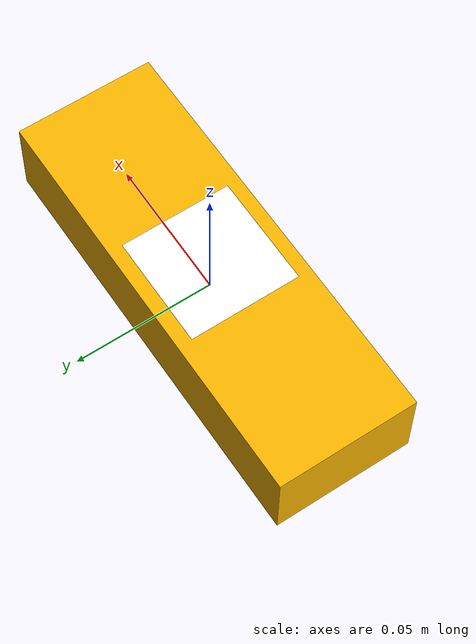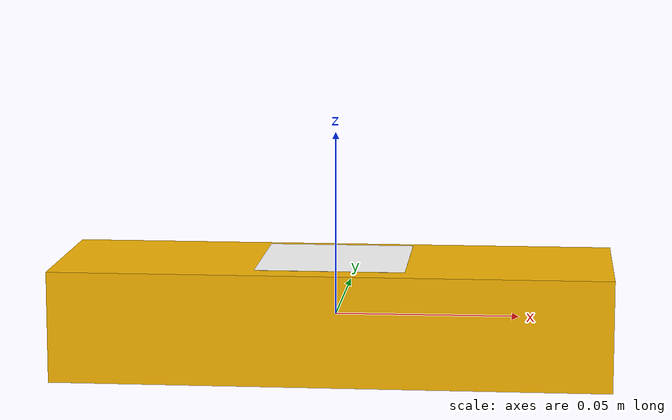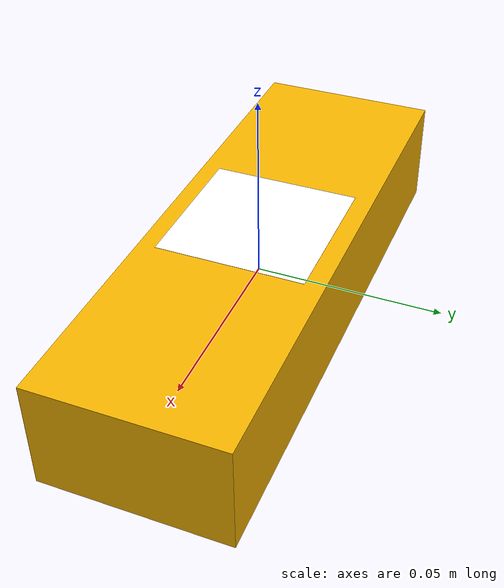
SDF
<?xml version="1.0" ?>
<sdf version="1.9">
  <model name="Crate_yellow">
    <static>false</static>
    <link name="link">
      <inertial>
        <mass>0.17</mass>
        <inertia>
          <ixx>0.166</ixx>
          <iyy>0.166</iyy>
          <izz>0.166</izz>
          <ixy>0</ixy>
          <ixz>0</ixz>
          <iyz>0</iyz>
        </inertia>
      </inertial>

      <collision name="collision">
        <geometry>
          <box>
            <size>0.15 0.05 0.03</size>
          </box>
        </geometry>
        <surface>
          <friction>
            <ode>
              <mu>1.0</mu>
              <mu2>1.0</mu2>
            </ode>
          </friction>
          <bounce/>
          <contact/>
        </surface>
      </collision>

      <visual name="visual">
        <geometry>
          <box>
            <size>0.15 0.05 0.03</size>
          </box>
        </geometry>
        <material>
          <ambient>0.969 0.710 0.000 1</ambient>
          <diffuse>0.969 0.710 0.000 1</diffuse>
          <specular>0.2 0.2 0.2 1</specular>
        </material>
      </visual>
      <visual name="aruco_top">
        <pose>0 0 0.0155 0 0 0</pose>
        <cast_shadows>false</cast_shadows>
        <geometry>
          <plane>
            <size>0.04 0.04</size>
            <normal>0 0 1</normal>
            <texture>
              <size>0.03 0.03</size>
            </texture>
          </plane>
        </geometry>
        <material>
          <diffuse>1 1 1 1</diffuse>
          <!-- ↑this is must!!!! -->
          <pbr>
            <metal>
              <albedo_map>model://models/aruco/aruco_47.png</albedo_map>
              <metalness>0.0</metalness>
              <roughness>1.0</roughness>
            </metal>
          </pbr>
          <double_sided>true</double_sided>
        </material>
      </visual>
    </link>
  </model>
</sdf>
